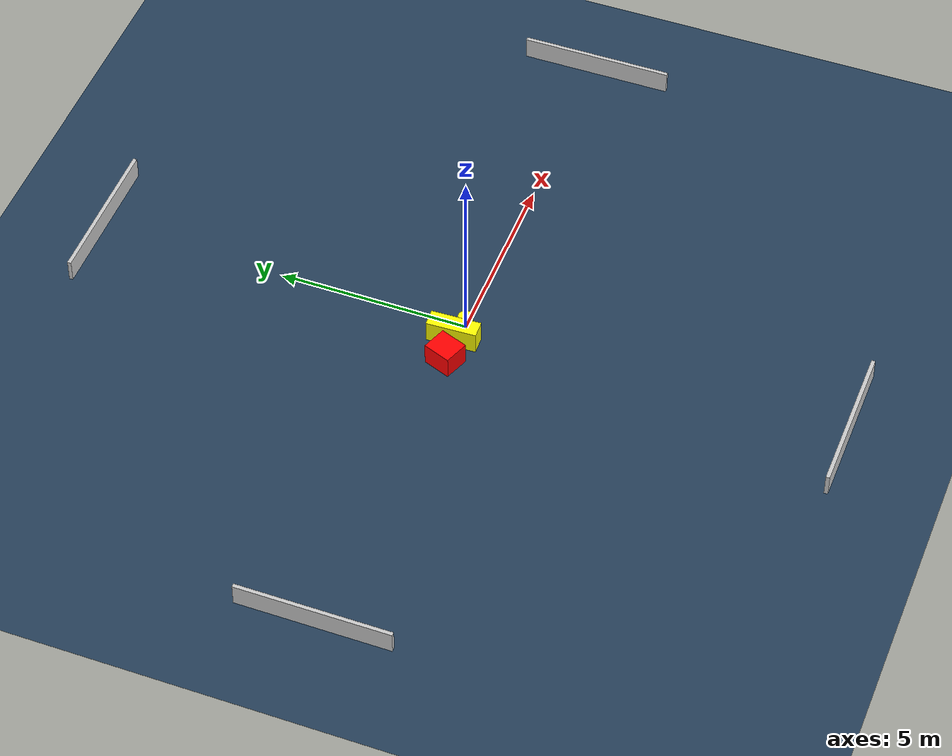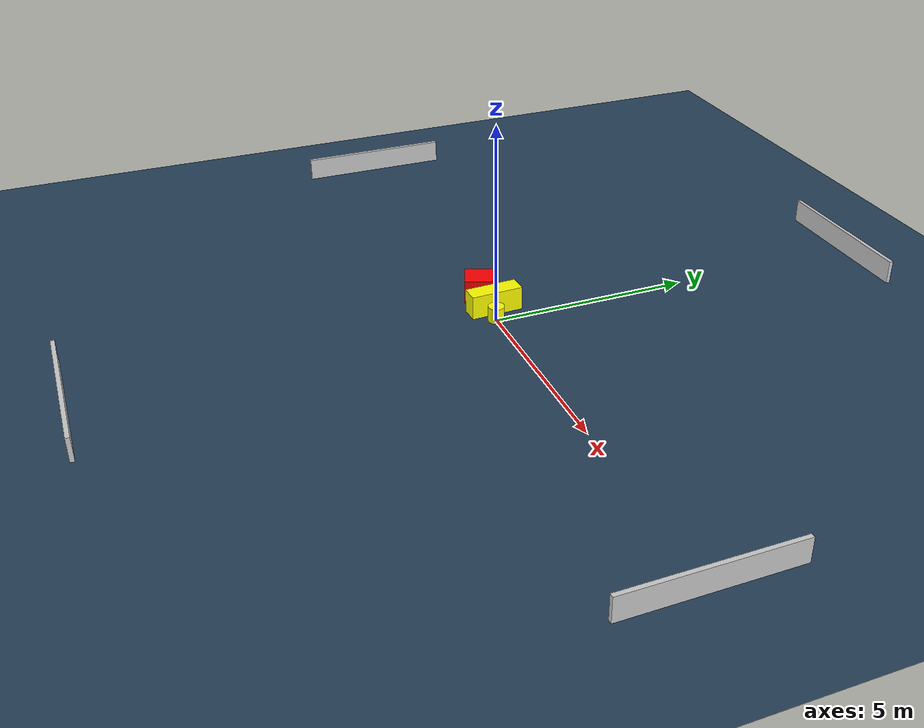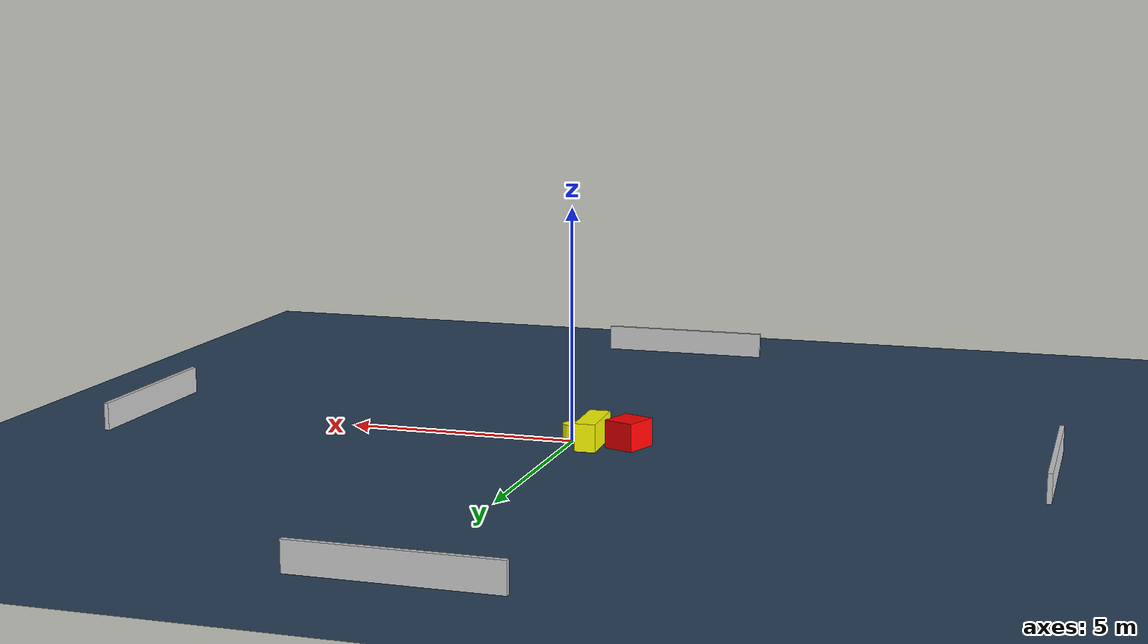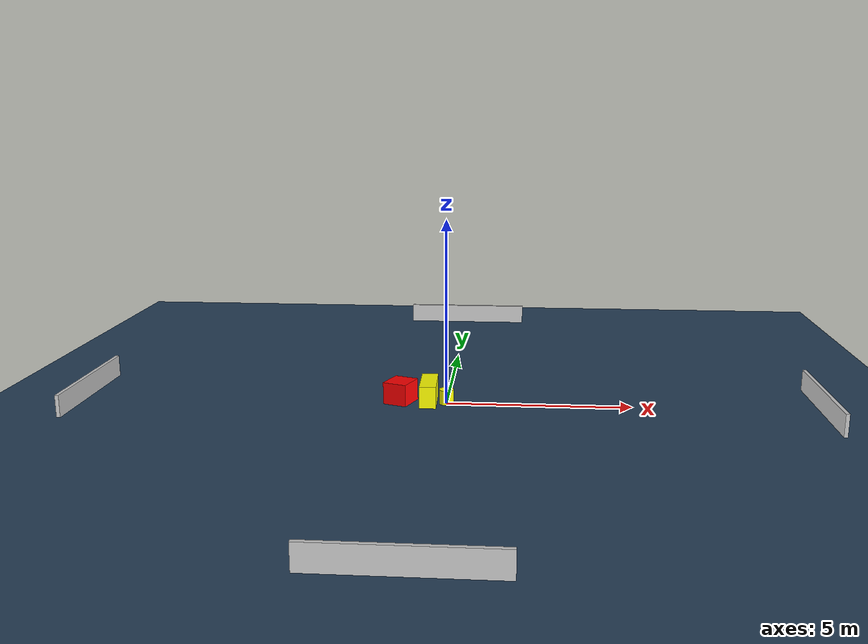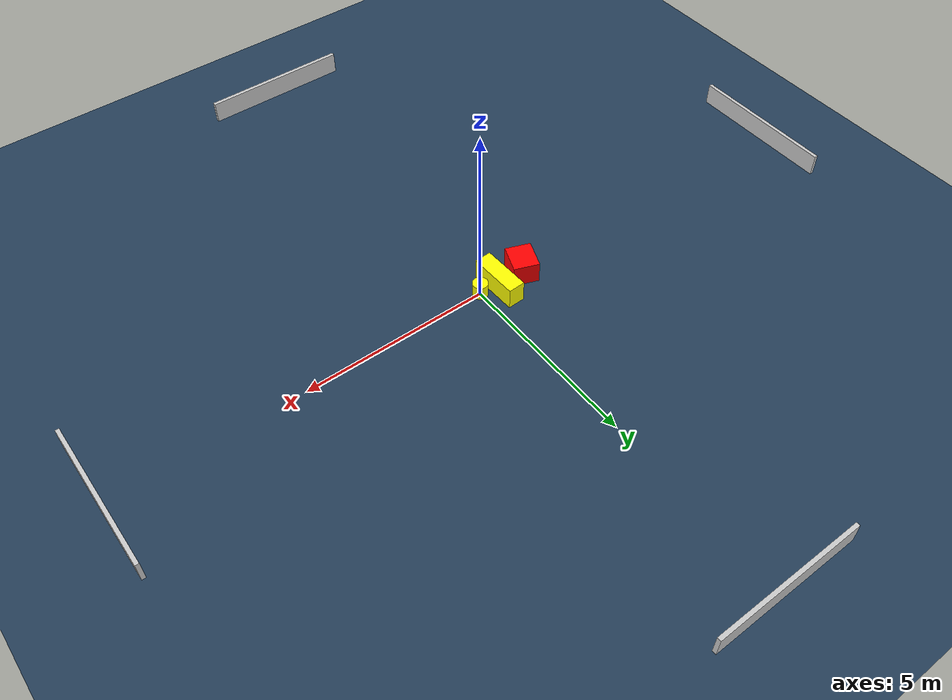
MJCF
<?xml version="1.0" ?>
<mujoco model="generated_environment">
  <option timestep="0.01" integrator="RK4" cone="elliptic"/>
  <default>
    <geom density="1"/>
  </default>
  <asset>
    <texture builtin="gradient" height="3072" name="skybox" rgb1="0.3 0.5 0.7" rgb2="0 0 0" type="skybox" width="512"/>
    <texture builtin="checker" height="300" name="groundplane" rgb1="0.2 0.3 0.4" rgb2="0.1 0.2 0.3" type="2d" width="300"/>
    <material name="groundplane" reflectance="0.2" texrepeat="5 5" texture="groundplane"/>
  </asset>
  <worldbody>
    <light dir="0 0 -1" directional="true" pos="0 0 1.5"/>
    <geom condim="3" friction="0.5 0.005 0.001" material="groundplane" name="floor" pos="0 0 0" size="0 0 0.05" type="plane"/>
    <body name="walls">
      <geom name="wall_1" condim="4" pos="-10.0 0.0 0.3" rgba="0.800000011920929 0.800000011920929 0.800000011920929 1.0" size="0.05 2.0 0.3" type="box"/>
      <geom name="wall_2" condim="4" pos="10.0 0.0 0.3" rgba="0.800000011920929 0.800000011920929 0.800000011920929 1.0" size="0.05 2.0 0.3" type="box"/>
      <geom name="wall_3" condim="4" pos="0.0 -10.0 0.3" rgba="0.800000011920929 0.800000011920929 0.800000011920929 1.0" size="2.0 0.05 0.3" type="box"/>
      <geom name="wall_4" condim="4" pos="0.0 10.0 0.3" rgba="0.800000011920929 0.800000011920929 0.800000011920929 1.0" size="2.0 0.05 0.3" type="box"/>
    </body>
    <body name="robot">
      <joint name="joint_x" type="slide" pos="0 0 0" axis="1 0 0"/>
      <joint name="joint_y" type="slide" pos="0 0 0" axis="0 1 0"/>
      <geom name="robot" type="cylinder" pos="0.0 0.0 0.2" size="0.2 0.2 0.0" mass="5.0" friction="1.0 0.005 0.0001" condim="4" rgba="1.0 1.0 0.0 1.0"/>
    </body>
    <body name="obstacle_1_movable">
      <geom name="obstacle_1_movable" condim="4" pos="-0.4940136795255833 0.1363918991915977 0.3" euler="0 0 1.9848960549325811" friction="0.0 0.005 0.001" rgba="1.0 1.0 0.0 1.0" size="0.22542573732989124 0.6557141132041251 0.3" type="box" mass="0.1"/>
      <joint type="free"/>
    </body>
    <body name="obstacle_2_static">
      <geom name="obstacle_2_static" condim="4" pos="-1.263807179231691 0.06434210962323304 0.3" euler="0 0 69.30486376830348" friction="0.0 0.005 0.001" rgba="1.0 0.0 0.0 1.0" size="0.37746026777585395 0.3374802352138863 0.3" type="box"/>
    </body>
  </worldbody>
  <actuator>
    <motor name="actuator_x" joint="joint_x" gear="1" ctrlrange="-1 1"/>
    <motor name="actuator_y" joint="joint_y" gear="1" ctrlrange="-1 1"/>
  </actuator>
</mujoco>
